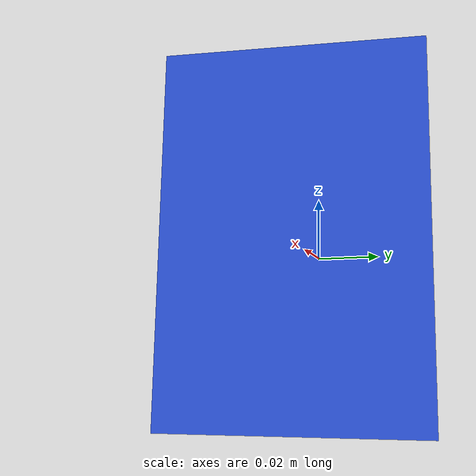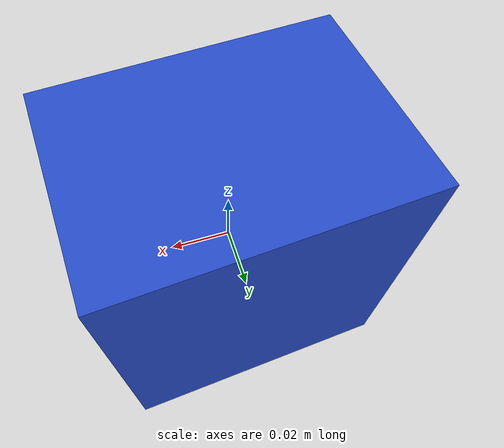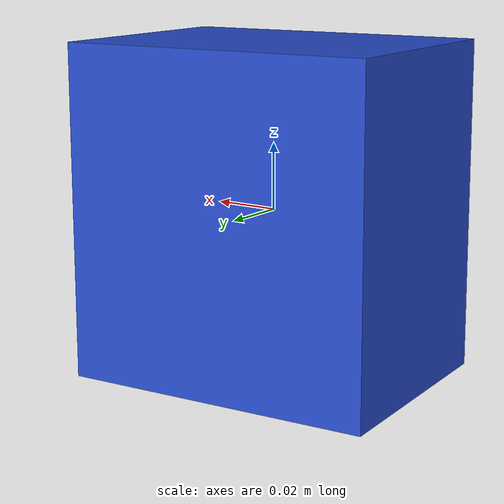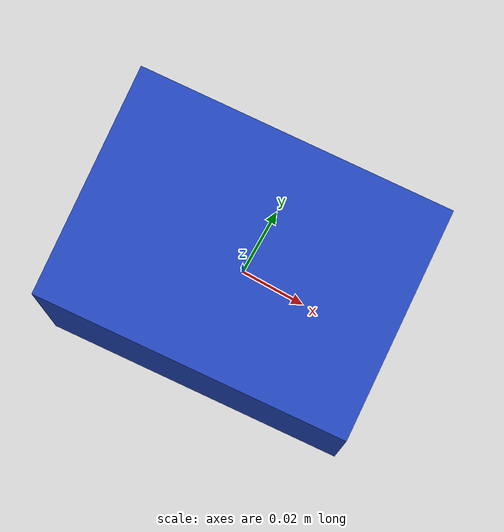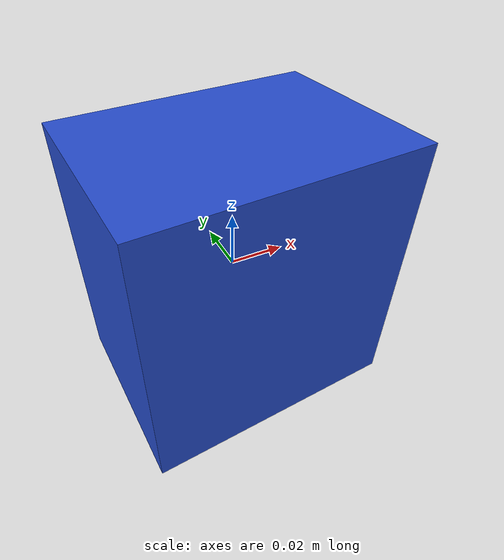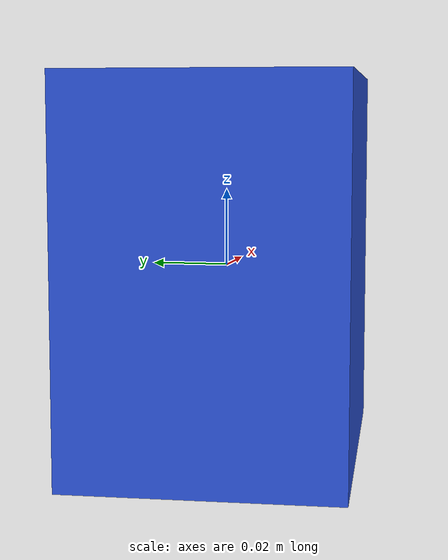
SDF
<sdf version="1.6"><model name="model_21"><static>true</static><link name="link"><pose>0 0 0 0 0 0.06949113276094715</pose><collision name="collision"><geometry><box><size>0.09521317277974453 0.07005299217243867 0.1</size></box></geometry></collision><visual name="visual"><geometry><box><size>0.09521317277974453 0.07005299217243867 0.1</size></box></geometry><material><script><name>Gazebo/Blue</name><uri>file://media/materials/scripts/gazebo.material</uri></script></material></visual></link></model></sdf>
